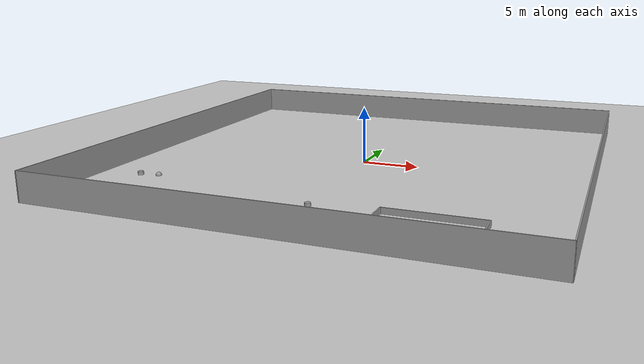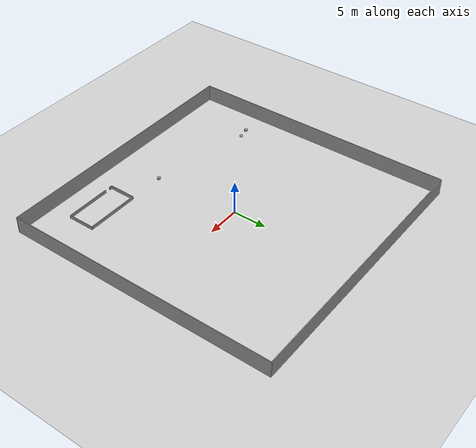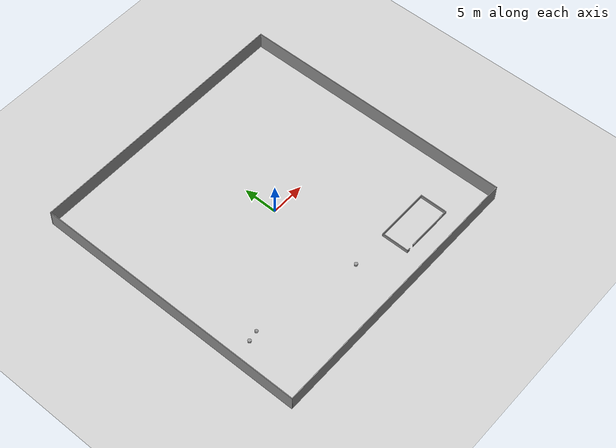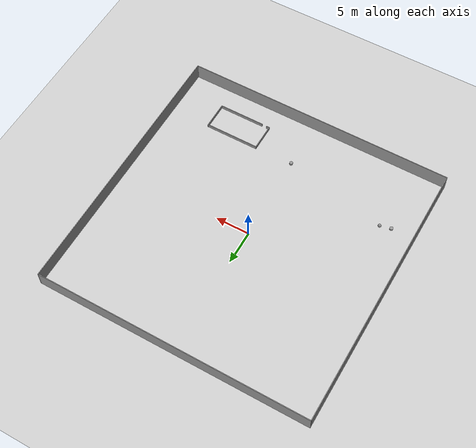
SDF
<sdf version="1.6">
 <world name="default">
  <model name="ground_plane">
   <static>1</static>
   <link name="link">
    <collision name="collision">
     <geometry><plane><normal>0 0 1</normal><size>40 40</size></plane></geometry>
     <surface>
      <contact><collide_bitmask>65535</collide_bitmask></contact>
      <friction><ode><mu>100</mu><mu2>50</mu2></ode></friction>
     </surface>
     <max_contacts>15</max_contacts>
    </collision>
    <visual name="visual">
     <cast_shadows>0</cast_shadows>
     <geometry><plane><normal>0 0 1</normal><size>40 40</size></plane></geometry>
     <material>
      <script><uri>file://media/materials/scripts/gazebo.material</uri><name>Gazebo/Grey</name></script>
     </material>
    </visual>
   </link>
  </model>
  <model name="outsidewall.sdf">
   <link name="Wall_3">
    <collision name="Wall_3_Collision">
     <geometry><box><size>40 0.10 2.5</size></box></geometry>
     <pose>0 0 1.25 0 -0 0</pose>
    </collision>
    <visual name="Wall_3_Visual">
     <pose>0 0 1.25 0 -0 0</pose>
     <geometry><box><size>40 0.10 2.5</size></box></geometry>
     <material>
      <script><uri>file://media/materials/scripts/gazebo.material</uri><name>Gazebo/Grey</name></script>
      <ambient>1 1 1 1</ambient>
     </material>
     <meta><layer>0</layer></meta>
    </visual>
    <pose>0 19.95 0 0 -0 0</pose>
   </link>
   <link name="Wall_5">
    <collision name="Wall_5_Collision">
     <geometry><box><size>40 0.10 2.5</size></box></geometry>
     <pose>0 0 1.25 0 -0 0</pose>
    </collision>
    <visual name="Wall_5_Visual">
     <pose>0 0 1.25 0 -0 0</pose>
     <geometry><box><size>40 0.10 2.5</size></box></geometry>
     <material>
      <script><uri>file://media/materials/scripts/gazebo.material</uri><name>Gazebo/Grey</name></script>
      <ambient>1 1 1 1</ambient>
     </material>
     <meta><layer>0</layer></meta>
    </visual>
    <pose>-19.95 0 0 0 -0 1.5707</pose>
   </link>
   <link name="Wall_6">
    <collision name="Wall_6_Collision">
     <geometry><box><size>40 0.10 2.5</size></box></geometry>
     <pose>0 0 1.25 0 -0 0</pose>
    </collision>
    <visual name="Wall_6_Visual">
     <pose>0 0 1.25 0 -0 0</pose>
     <geometry><box><size>40 0.10 2.5</size></box></geometry>
     <material>
      <script><uri>file://media/materials/scripts/gazebo.material</uri><name>Gazebo/Grey</name></script>
      <ambient>1 1 1 1</ambient>
     </material>
     <meta><layer>0</layer></meta>
    </visual>
    <pose>0 -19.95 0 0 -0 0</pose>
   </link>
   <link name="Wall_7">
    <collision name="Wall_7_Collision">
     <geometry><box><size>40 0.10 2.5</size></box></geometry>
     <pose>0 0 1.25 0 -0 0</pose>
    </collision>
    <visual name="Wall_7_Visual">
     <pose>0 0 1.25 0 -0 0</pose>
     <geometry><box><size>40 0.10 2.5</size></box></geometry>
     <material>
      <script><uri>file://media/materials/scripts/gazebo.material</uri><name>Gazebo/Grey</name></script>
      <ambient>1 1 1 1</ambient>
     </material>
     <meta><layer>0</layer></meta>
    </visual>
    <pose>19.95 0 0 0 -0 1.5707</pose>
   </link>
   <static>1</static>
  </model>
  <model name="shape3">
   <pose>10 -14.7 0 0 -0 0</pose>
   <link name="Wall_11">
    <collision name="Wall_11_Collision">
     <geometry><box><size>4 0.1 0.5</size></box></geometry>
     <pose>0 0 0.25 0 -0 0</pose>
    </collision>
    <visual name="Wall_11_Visual">
     <pose>0 0 0.25 0 -0 0</pose>
     <geometry><box><size>4 0.1 0.5</size></box></geometry>
     <material>
      <script><uri>file://media/materials/scripts/gazebo.material</uri><name>Gazebo/Grey</name></script>
      <ambient>1 1 1 1</ambient>
     </material>
     <meta><layer>0</layer></meta>
    </visual>
    <pose>-3.95 0 0 0 -0 -1.5708</pose>
   </link>
   <link name="Wall_12">
    <collision name="Wall_12_Collision">
     <geometry><box><size>0.5 0.1 0.5</size></box></geometry>
     <pose>0 0 0.25 0 -0 0</pose>
    </collision>
    <visual name="Wall_12_Visual">
     <pose>0 0 0.25 0 -0 0</pose>
     <geometry><box><size>0.5 0.1 0.5</size></box></geometry>
     <material>
      <script><uri>file://media/materials/scripts/gazebo.material</uri><name>Gazebo/Grey</name></script>
      <ambient>1 1 1 1</ambient>
     </material>
     <meta><layer>0</layer></meta>
    </visual>
    <pose>-3.75 -1.95 0 0 -0 0</pose>
   </link>
   <link name="Wall_7">
    <collision name="Wall_7_Collision">
     <geometry><box><size>8 0.1 0.5</size></box></geometry>
     <pose>0 0 0.25 0 -0 0</pose>
    </collision>
    <visual name="Wall_7_Visual">
     <pose>0 0 0.25 0 -0 0</pose>
     <geometry><box><size>8 0.1 0.5</size></box></geometry>
     <material>
      <script><uri>file://media/materials/scripts/gazebo.material</uri><name>Gazebo/Grey</name></script>
      <ambient>1 1 1 1</ambient>
     </material>
     <meta><layer>0</layer></meta>
    </visual>
    <pose>-0 1.95 0 0 -0 0</pose>
   </link>
   <link name="Wall_8">
    <collision name="Wall_8_Collision">
     <geometry><box><size>4 0.1 0.5</size></box></geometry>
     <pose>0 0 0.25 0 -0 0</pose>
    </collision>
    <visual name="Wall_8_Visual">
     <pose>0 0 0.25 0 -0 0</pose>
     <geometry><box><size>4 0.1 0.5</size></box></geometry>
     <material>
      <script><uri>file://media/materials/scripts/gazebo.material</uri><name>Gazebo/Grey</name></script>
      <ambient>1 1 1 1</ambient>
     </material>
     <meta><layer>0</layer></meta>
    </visual>
    <pose>3.95 0 0 0 -0 -1.5708</pose>
   </link>
   <link name="Wall_9">
    <collision name="Wall_9_Collision">
     <geometry><box><size>6.8 0.1 0.5</size></box></geometry>
     <pose>0 0 0.25 0 -0 0</pose>
    </collision>
    <visual name="Wall_9_Visual">
     <pose>0 0 0.25 0 -0 0</pose>
     <geometry><box><size>6.8 0.1 0.5</size></box></geometry>
     <material>
      <script><uri>file://media/materials/scripts/gazebo.material</uri><name>Gazebo/Grey</name></script>
      <ambient>1 1 1 1</ambient>
     </material>
     <meta><layer>0</layer></meta>
    </visual>
    <pose>0.6 -1.95 0 0 -0 3.14159</pose>
   </link>
   <static>1</static>
  </model>
  <model name="cylinder_d=50">
   <link name="link_0">
    <inertial>
     <mass>1</mass>
     <inertia><ixx>0.145833</ixx><ixy>0</ixy><ixz>0</ixz><iyy>0.145833</iyy><iyz>0</iyz><izz>0.125</izz></inertia>
    </inertial>
    <pose>0.450001 -12.95 0 0 -0 0</pose>
    <visual name="visual">
     <geometry><cylinder><radius>0.25</radius><length>0.5</length></cylinder></geometry>
     <material>
      <lighting>1</lighting>
      <script><uri>file://media/materials/scripts/gazebo.material</uri><name>Gazebo/Grey</name></script>
      <shader type="vertex"><normal_map>__default__</normal_map></shader>
      <ambient>0.3 0.3 0.3 1</ambient>
      <diffuse>0.7 0.7 0.7 1</diffuse>
      <specular>0.01 0.01 0.01 1</specular>
      <emissive>0 0 0 1</emissive>
     </material>
    </visual>
    <collision name="collision">
     <geometry><cylinder><radius>0.25</radius><length>0.5</length></cylinder></geometry>
     <surface>
      <friction>
       <ode><mu>1</mu><mu2>1</mu2><fdir1>0 0 0</fdir1><slip1>0</slip1><slip2>0</slip2></ode>
       <torsional>
        <coefficient>1</coefficient>
        <patch_radius>0</patch_radius>
        <surface_radius>0</surface_radius>
        <use_patch_radius>1</use_patch_radius>
        <ode><slip>0</slip></ode>
       </torsional>
      </friction>
      <bounce><restitution_coefficient>0</restitution_coefficient><threshold>1e+06</threshold></bounce>
      <contact>
       <collide_without_contact>0</collide_without_contact>
       <collide_without_contact_bitmask>1</collide_without_contact_bitmask>
       <collide_bitmask>1</collide_bitmask>
       <ode>
        <soft_cfm>0</soft_cfm>
        <soft_erp>0.2</soft_erp>
        <kp>1e+13</kp>
        <kd>1</kd>
        <max_vel>0.01</max_vel>
        <min_depth>0</min_depth>
       </ode>
       <bullet>
        <split_impulse>1</split_impulse>
        <split_impulse_penetration_threshold>-0.01</split_impulse_penetration_threshold>
        <soft_cfm>0</soft_cfm>
        <soft_erp>0.2</soft_erp>
        <kp>1e+13</kp>
        <kd>1</kd>
       </bullet>
      </contact>
     </surface>
    </collision>
   </link>
   <static>0</static>
  </model>
  <model name="ball_d=50">
   <link name="link_1">
    <inertial>
     <mass>1</mass>
     <inertia><ixx>0.1</ixx><ixy>0</ixy><ixz>0</ixz><iyy>0.1</iyy><iyz>0</iyz><izz>0.1</izz></inertia>
    </inertial>
    <pose>-14.85 -9.95 0 0 -0 0</pose>
    <visual name="visual">
     <geometry><sphere><radius>0.25</radius></sphere></geometry>
     <material>
      <lighting>1</lighting>
      <script><uri>file://media/materials/scripts/gazebo.material</uri><name>Gazebo/Grey</name></script>
      <shader type="vertex"><normal_map>__default__</normal_map></shader>
      <ambient>0.3 0.3 0.3 1</ambient>
      <diffuse>0.7 0.7 0.7 1</diffuse>
      <specular>0.01 0.01 0.01 1</specular>
      <emissive>0 0 0 1</emissive>
     </material>
    </visual>
    <collision name="collision">
     <geometry><sphere><radius>0.25</radius></sphere></geometry>
     <surface>
      <friction>
       <ode><mu>1</mu><mu2>1</mu2><fdir1>0 0 0</fdir1><slip1>0</slip1><slip2>0</slip2></ode>
       <torsional>
        <coefficient>1</coefficient>
        <patch_radius>0</patch_radius>
        <surface_radius>0</surface_radius>
        <use_patch_radius>1</use_patch_radius>
        <ode><slip>0</slip></ode>
       </torsional>
      </friction>
      <bounce><restitution_coefficient>0</restitution_coefficient><threshold>1e+06</threshold></bounce>
      <contact>
       <collide_without_contact>0</collide_without_contact>
       <collide_without_contact_bitmask>1</collide_without_contact_bitmask>
       <collide_bitmask>1</collide_bitmask>
       <ode>
        <soft_cfm>0</soft_cfm>
        <soft_erp>0.2</soft_erp>
        <kp>1e+13</kp>
        <kd>1</kd>
        <max_vel>0.01</max_vel>
        <min_depth>0</min_depth>
       </ode>
       <bullet>
        <split_impulse>1</split_impulse>
        <split_impulse_penetration_threshold>-0.01</split_impulse_penetration_threshold>
        <soft_cfm>0</soft_cfm>
        <soft_erp>0.2</soft_erp>
        <kp>1e+13</kp>
        <kd>1</kd>
       </bullet>
      </contact>
     </surface>
    </collision>
   </link>
   <static>0</static>
  </model>
  <model name="cylinder_d=50">
   <link name="link_0">
    <inertial>
     <mass>1</mass>
     <inertia><ixx>0.145833</ixx><ixy>0</ixy><ixz>0</ixz><iyy>0.145833</iyy><iyz>0</iyz><izz>0.125</izz></inertia>
    </inertial>
    <pose>-16.45 -10.25 0 0 -0 0</pose>
    <visual name="visual">
     <geometry><cylinder><radius>0.25</radius><length>0.5</length></cylinder></geometry>
     <material>
      <lighting>1</lighting>
      <script><uri>file://media/materials/scripts/gazebo.material</uri><name>Gazebo/Grey</name></script>
      <shader type="vertex"><normal_map>__default__</normal_map></shader>
      <ambient>0.3 0.3 0.3 1</ambient>
      <diffuse>0.7 0.7 0.7 1</diffuse>
      <specular>0.01 0.01 0.01 1</specular>
      <emissive>0 0 0 1</emissive>
     </material>
    </visual>
    <collision name="collision">
     <geometry><cylinder><radius>0.25</radius><length>0.5</length></cylinder></geometry>
     <surface>
      <friction>
       <ode><mu>1</mu><mu2>1</mu2><fdir1>0 0 0</fdir1><slip1>0</slip1><slip2>0</slip2></ode>
       <torsional>
        <coefficient>1</coefficient>
        <patch_radius>0</patch_radius>
        <surface_radius>0</surface_radius>
        <use_patch_radius>1</use_patch_radius>
        <ode><slip>0</slip></ode>
       </torsional>
      </friction>
      <bounce><restitution_coefficient>0</restitution_coefficient><threshold>1e+06</threshold></bounce>
      <contact>
       <collide_without_contact>0</collide_without_contact>
       <collide_without_contact_bitmask>1</collide_without_contact_bitmask>
       <collide_bitmask>1</collide_bitmask>
       <ode>
        <soft_cfm>0</soft_cfm>
        <soft_erp>0.2</soft_erp>
        <kp>1e+13</kp>
        <kd>1</kd>
        <max_vel>0.01</max_vel>
        <min_depth>0</min_depth>
       </ode>
       <bullet>
        <split_impulse>1</split_impulse>
        <split_impulse_penetration_threshold>-0.01</split_impulse_penetration_threshold>
        <soft_cfm>0</soft_cfm>
        <soft_erp>0.2</soft_erp>
        <kp>1e+13</kp>
        <kd>1</kd>
       </bullet>
      </contact>
     </surface>
    </collision>
   </link>
   <static>0</static>
  </model>
 </world>
</sdf>
